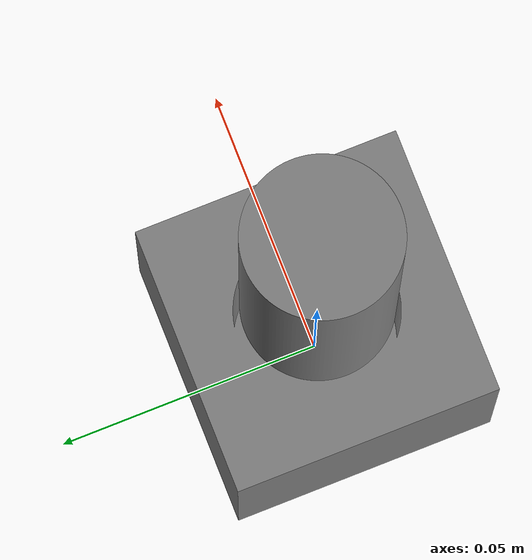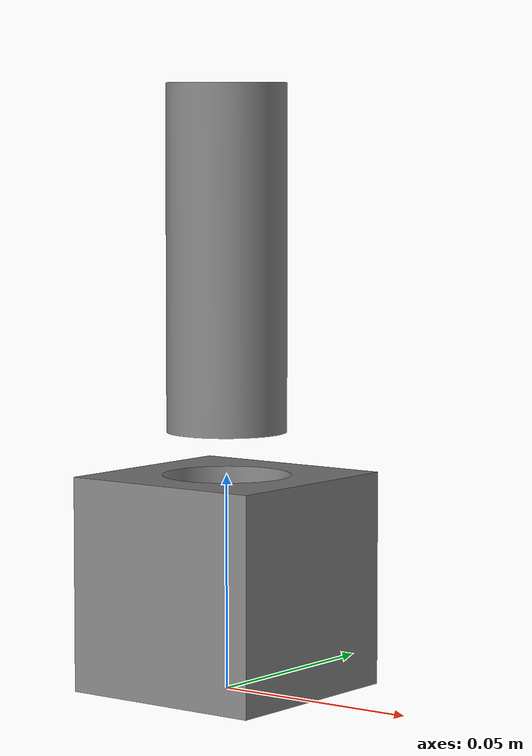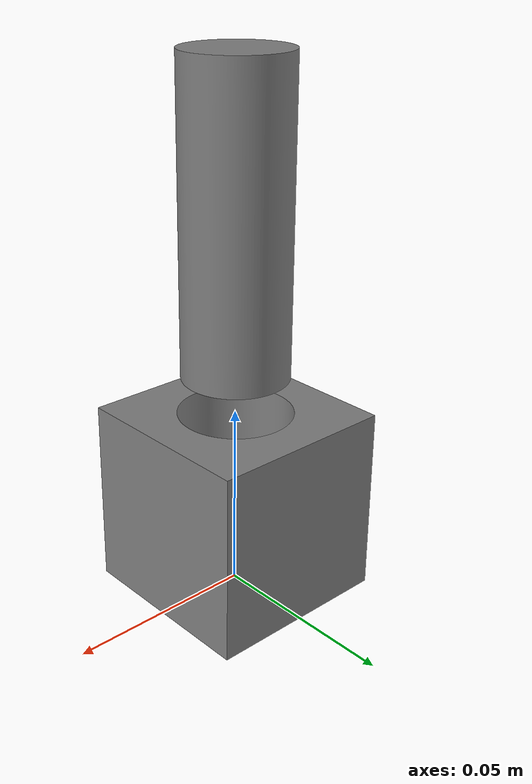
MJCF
<mujoco model="block_w_hole_m">
  <compiler angle="radian" />

  <default>
    <default class="visual">
      <geom group="2" type="mesh" contype="0" conaffinity="0"/>
    </default>
    <default class="collision">
      <geom group="3" type="mesh"/>
    </default>
  </default>
  <asset>
    <mesh file="block_w_hole_m.obj"/>
    <mesh file="block_w_hole_m_collision_0.obj"/>
    <mesh file="block_w_hole_m_collision_1.obj"/>
    <mesh file="block_w_hole_m_collision_2.obj"/>
    <mesh file="block_w_hole_m_collision_3.obj"/>
    <mesh file="block_w_hole_m_collision_4.obj"/>
    <mesh file="block_w_hole_m_collision_5.obj"/>
    <mesh file="block_w_hole_m_collision_6.obj"/>
    <mesh file="block_w_hole_m_collision_7.obj"/>
    <mesh file="block_w_hole_m_collision_8.obj"/>
    <mesh file="block_w_hole_m_collision_9.obj"/>
    <mesh file="block_w_hole_m_collision_10.obj"/>
    <mesh file="block_w_hole_m_collision_11.obj"/>
    <mesh file="block_w_hole_m_collision_12.obj"/>
    <mesh file="block_w_hole_m_collision_13.obj"/>
    <mesh file="block_w_hole_m_collision_14.obj"/>
    <mesh file="block_w_hole_m_collision_15.obj"/>
    <mesh file="block_w_hole_m_collision_16.obj"/>
    <mesh file="pin_bigger_bigger.stl"/>
  </asset>
  <worldbody>
    <body name="block_w_hole_m" euler="0 1.57 1.57" pos="0 0 0">
      <geom mesh="block_w_hole_m" class="visual"/>
      <geom mesh="block_w_hole_m_collision_0" rgba="0.022457231989354565 0.11155928469987186 0.6507018293434248 1" class="collision"/>
      <geom mesh="block_w_hole_m_collision_1" rgba="0.274437311410075 0.6423475615804474 0.5916414932699113 1" class="collision"/>
      <geom mesh="block_w_hole_m_collision_2" rgba="0.5202473577635259 0.9587162011071416 0.3572052121406447 1" class="collision"/>
      <geom mesh="block_w_hole_m_collision_3" rgba="0.15402276467585718 0.922785888684969 0.8550944556267558 1" class="collision"/>
      <geom mesh="block_w_hole_m_collision_4" rgba="0.6297159927523371 0.0962224255889228 0.7118821542422223 1" class="collision"/>
      <geom mesh="block_w_hole_m_collision_5" rgba="0.9142264508070114 0.4267494631228689 0.044231418834157266 1" class="collision"/>
      <geom mesh="block_w_hole_m_collision_6" rgba="0.40506182574167915 0.07701127324421186 0.8027034511841786 1" class="collision"/>
      <geom mesh="block_w_hole_m_collision_7" rgba="0.5250436427932563 0.5308992397181914 0.9684872596574604 1" class="collision"/>
      <geom mesh="block_w_hole_m_collision_8" rgba="0.8122467413907666 0.38457037472001754 0.4921009809297652 1" class="collision"/>
      <geom mesh="block_w_hole_m_collision_9" rgba="0.4576491369049551 0.012731726802567178 0.7322948389562864 1" class="collision"/>
      <geom mesh="block_w_hole_m_collision_10" rgba="0.49447000526386775 0.029793590480261645 0.09586350110938602 1" class="collision"/>
      <geom mesh="block_w_hole_m_collision_11" rgba="0.39379951914433875 0.02047470625979797 0.29631724115371394 1" class="collision"/>
      <geom mesh="block_w_hole_m_collision_12" rgba="0.13238332071442893 0.36964137658542995 0.3805726896670507 1" class="collision"/>
      <geom mesh="block_w_hole_m_collision_13" rgba="0.2902019870654572 0.4145347710273486 0.7511058882890603 1" class="collision"/>
      <geom mesh="block_w_hole_m_collision_14" rgba="0.3211912964024324 0.5679426840584924 0.7970848000209965 1" class="collision"/>
      <geom mesh="block_w_hole_m_collision_15" rgba="0.889129120579119 0.7016474800972939 0.47493600040374684 1" class="collision"/>
      <geom mesh="block_w_hole_m_collision_16" rgba="0.45713661167334907 0.23757994984849007 0.8646471449280535 1" class="collision"/>
    </body>
    <body name="pin" pos="0 0 0.06">
      <geom mesh="pin_bigger_bigger" class="visual"/>
      <geom mesh="pin_bigger_bigger" class="collision"/>
      <freejoint name="pin_freejoint"/>
    </body>
  </worldbody>
</mujoco>
